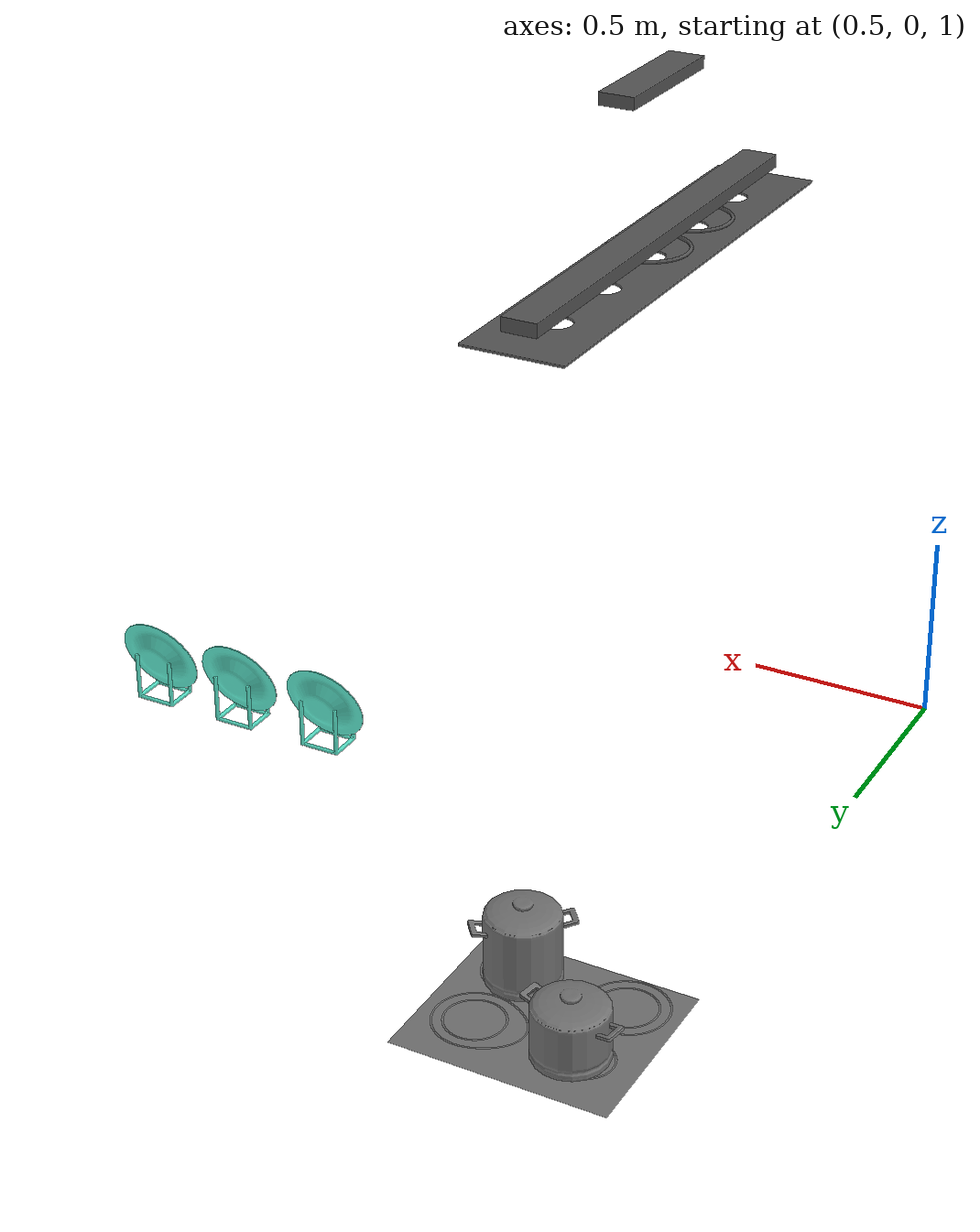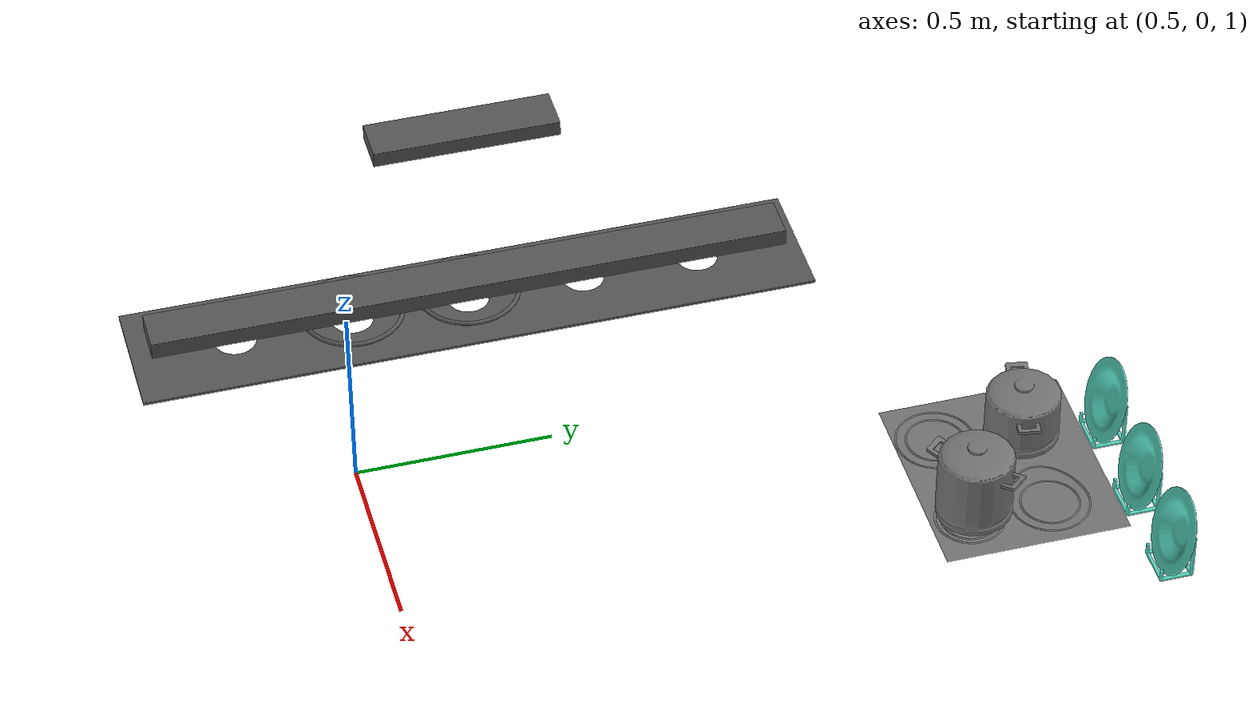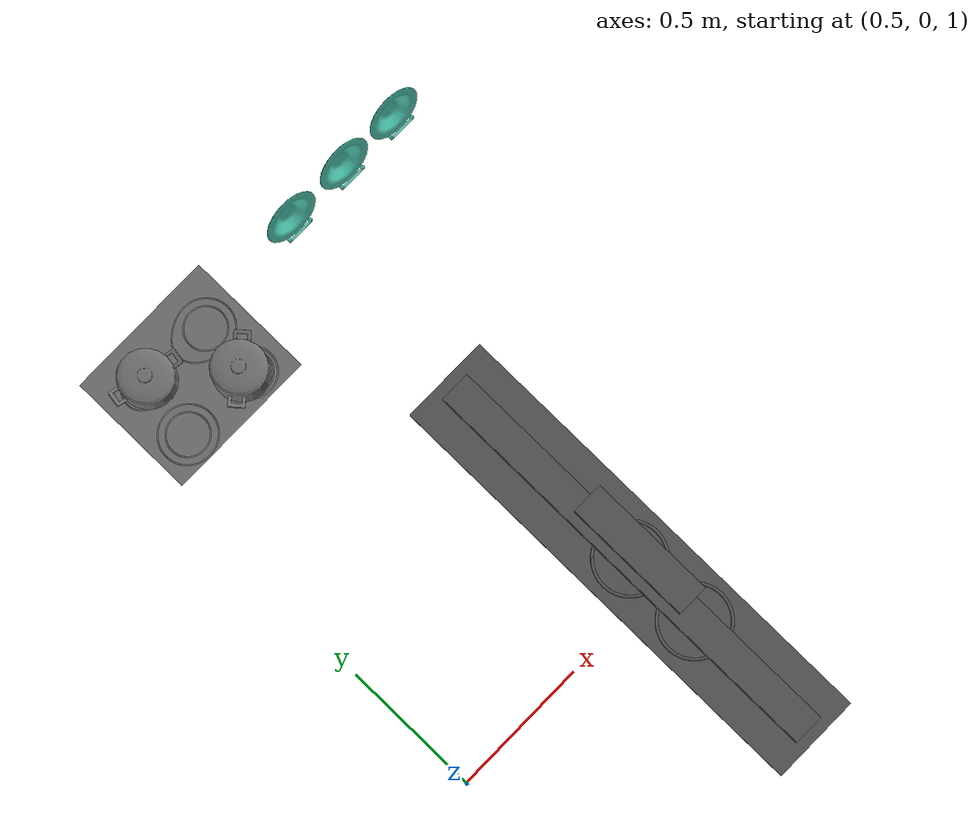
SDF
<sdf version="1.6">
 <world name="default">
  <model name="part20.obj">
   <static>1</static>
   <pose>-12.0 -13.9 0 0 0 0</pose>
   <link name="link_d20">
    <inertial>
     <mass>0</mass>
     <inertia>
      <ixx>0.166667</ixx>
      <ixy>0</ixy>
      <ixz>0</ixz>
      <iyy>0.166667</iyy>
      <iyz>0</iyz>
      <izz>0.166667</izz>
     </inertia>
    </inertial>
    <collision concave="yes" name="collision_20">
     <geometry><mesh><scale>.1 .1 .1</scale><uri>fatihrmutfak/part20.obj</uri></mesh></geometry>
    </collision>
    <visual name="visual">
     <geometry><mesh><scale>.1 .1 .1</scale><uri>fatihrmutfak/part20.obj</uri></mesh></geometry>
     <material>
      <ambient>1 0 0 1</ambient>
      <diffuse>0.451000 0.451000 0.451000 1</diffuse>
      <specular>0.1 0.1 0.1 1</specular>
      <emissive>0 0 0 0</emissive>
     </material>
    </visual>
   </link>
  </model>
  <model name="part21.obj">
   <static>1</static>
   <pose>-12.0 -13.9 0 0 0 0</pose>
   <link name="link_d21">
    <inertial>
     <mass>0</mass>
     <inertia>
      <ixx>0.166667</ixx>
      <ixy>0</ixy>
      <ixz>0</ixz>
      <iyy>0.166667</iyy>
      <iyz>0</iyz>
      <izz>0.166667</izz>
     </inertia>
    </inertial>
    <collision concave="yes" name="collision_21">
     <geometry><mesh><scale>.1 .1 .1</scale><uri>fatihrmutfak/part21.obj</uri></mesh></geometry>
    </collision>
    <visual name="visual">
     <geometry><mesh><scale>.1 .1 .1</scale><uri>fatihrmutfak/part21.obj</uri></mesh></geometry>
     <material>
      <ambient>1 0 0 1</ambient>
      <diffuse>0.451000 0.451000 0.451000 1</diffuse>
      <specular>0.1 0.1 0.1 1</specular>
      <emissive>0 0 0 0</emissive>
     </material>
    </visual>
   </link>
  </model>
  <model name="part22.obj">
   <static>1</static>
   <pose>-12.0 -13.9 0 0 0 0</pose>
   <link name="link_d22">
    <inertial>
     <mass>0</mass>
     <inertia>
      <ixx>0.166667</ixx>
      <ixy>0</ixy>
      <ixz>0</ixz>
      <iyy>0.166667</iyy>
      <iyz>0</iyz>
      <izz>0.166667</izz>
     </inertia>
    </inertial>
    <collision concave="yes" name="collision_22">
     <geometry><mesh><scale>.1 .1 .1</scale><uri>fatihrmutfak/part22.obj</uri></mesh></geometry>
    </collision>
    <visual name="visual">
     <geometry><mesh><scale>.1 .1 .1</scale><uri>fatihrmutfak/part22.obj</uri></mesh></geometry>
     <material>
      <ambient>1 0 0 1</ambient>
      <diffuse>0.451000 0.451000 0.451000 1</diffuse>
      <specular>0.1 0.1 0.1 1</specular>
      <emissive>0 0 0 0</emissive>
     </material>
    </visual>
   </link>
  </model>
  <model name="part23.obj">
   <static>1</static>
   <pose>-12.0 -13.9 0 0 0 0</pose>
   <link name="link_d23">
    <inertial>
     <mass>0</mass>
     <inertia>
      <ixx>0.166667</ixx>
      <ixy>0</ixy>
      <ixz>0</ixz>
      <iyy>0.166667</iyy>
      <iyz>0</iyz>
      <izz>0.166667</izz>
     </inertia>
    </inertial>
    <collision concave="yes" name="collision_23">
     <geometry><mesh><scale>.1 .1 .1</scale><uri>fatihrmutfak/part23.obj</uri></mesh></geometry>
    </collision>
    <visual name="visual">
     <geometry><mesh><scale>.1 .1 .1</scale><uri>fatihrmutfak/part23.obj</uri></mesh></geometry>
     <material>
      <ambient>1 0 0 1</ambient>
      <diffuse>0.451000 0.451000 0.451000 1</diffuse>
      <specular>0.1 0.1 0.1 1</specular>
      <emissive>0 0 0 0</emissive>
     </material>
    </visual>
   </link>
  </model>
  <model name="part24.obj">
   <static>1</static>
   <pose>-12.0 -13.9 0 0 0 0</pose>
   <link name="link_d24">
    <inertial>
     <mass>0</mass>
     <inertia>
      <ixx>0.166667</ixx>
      <ixy>0</ixy>
      <ixz>0</ixz>
      <iyy>0.166667</iyy>
      <iyz>0</iyz>
      <izz>0.166667</izz>
     </inertia>
    </inertial>
    <collision concave="yes" name="collision_24">
     <geometry><mesh><scale>.1 .1 .1</scale><uri>fatihrmutfak/part24.obj</uri></mesh></geometry>
    </collision>
    <visual name="visual">
     <geometry><mesh><scale>.1 .1 .1</scale><uri>fatihrmutfak/part24.obj</uri></mesh></geometry>
     <material>
      <ambient>1 0 0 1</ambient>
      <diffuse>0.451000 0.451000 0.451000 1</diffuse>
      <specular>0.1 0.1 0.1 1</specular>
      <emissive>0 0 0 0</emissive>
     </material>
    </visual>
   </link>
  </model>
  <model name="part25.obj">
   <static>1</static>
   <pose>-12.0 -13.9 0 0 0 0</pose>
   <link name="link_d25">
    <inertial>
     <mass>0</mass>
     <inertia>
      <ixx>0.166667</ixx>
      <ixy>0</ixy>
      <ixz>0</ixz>
      <iyy>0.166667</iyy>
      <iyz>0</iyz>
      <izz>0.166667</izz>
     </inertia>
    </inertial>
    <collision concave="yes" name="collision_25">
     <geometry><mesh><scale>.1 .1 .1</scale><uri>fatihrmutfak/part25.obj</uri></mesh></geometry>
    </collision>
    <visual name="visual">
     <geometry><mesh><scale>.1 .1 .1</scale><uri>fatihrmutfak/part25.obj</uri></mesh></geometry>
     <material>
      <ambient>1 0 0 1</ambient>
      <diffuse>0.451000 0.451000 0.451000 1</diffuse>
      <specular>0.1 0.1 0.1 1</specular>
      <emissive>0 0 0 0</emissive>
     </material>
    </visual>
   </link>
  </model>
  <model name="part26.obj">
   <static>1</static>
   <pose>-12.0 -13.9 0 0 0 0</pose>
   <link name="link_d26">
    <inertial>
     <mass>0</mass>
     <inertia>
      <ixx>0.166667</ixx>
      <ixy>0</ixy>
      <ixz>0</ixz>
      <iyy>0.166667</iyy>
      <iyz>0</iyz>
      <izz>0.166667</izz>
     </inertia>
    </inertial>
    <collision concave="yes" name="collision_26">
     <geometry><mesh><scale>.1 .1 .1</scale><uri>fatihrmutfak/part26.obj</uri></mesh></geometry>
    </collision>
    <visual name="visual">
     <geometry><mesh><scale>.1 .1 .1</scale><uri>fatihrmutfak/part26.obj</uri></mesh></geometry>
     <material>
      <ambient>1 0 0 1</ambient>
      <diffuse>0.451000 0.451000 0.451000 1</diffuse>
      <specular>0.1 0.1 0.1 1</specular>
      <emissive>0 0 0 0</emissive>
     </material>
    </visual>
   </link>
  </model>
  <model name="part27.obj">
   <static>1</static>
   <pose>-12.0 -13.9 0 0 0 0</pose>
   <link name="link_d27">
    <inertial>
     <mass>0</mass>
     <inertia>
      <ixx>0.166667</ixx>
      <ixy>0</ixy>
      <ixz>0</ixz>
      <iyy>0.166667</iyy>
      <iyz>0</iyz>
      <izz>0.166667</izz>
     </inertia>
    </inertial>
    <collision concave="yes" name="collision_27">
     <geometry><mesh><scale>.1 .1 .1</scale><uri>fatihrmutfak/part27.obj</uri></mesh></geometry>
    </collision>
    <visual name="visual">
     <geometry><mesh><scale>.1 .1 .1</scale><uri>fatihrmutfak/part27.obj</uri></mesh></geometry>
     <material>
      <ambient>1 0 0 1</ambient>
      <diffuse>0.451000 0.451000 0.451000 1</diffuse>
      <specular>0.1 0.1 0.1 1</specular>
      <emissive>0 0 0 0</emissive>
     </material>
    </visual>
   </link>
  </model>
  <model name="part28.obj">
   <static>1</static>
   <pose>-12.0 -13.9 0 0 0 0</pose>
   <link name="link_d28">
    <inertial>
     <mass>0</mass>
     <inertia>
      <ixx>0.166667</ixx>
      <ixy>0</ixy>
      <ixz>0</ixz>
      <iyy>0.166667</iyy>
      <iyz>0</iyz>
      <izz>0.166667</izz>
     </inertia>
    </inertial>
    <collision concave="yes" name="collision_28">
     <geometry><mesh><scale>.1 .1 .1</scale><uri>fatihrmutfak/part28.obj</uri></mesh></geometry>
    </collision>
    <visual name="visual">
     <geometry><mesh><scale>.1 .1 .1</scale><uri>fatihrmutfak/part28.obj</uri></mesh></geometry>
     <material>
      <ambient>1 0 0 1</ambient>
      <diffuse>0.341200 0.878400 0.776500 1</diffuse>
      <specular>0.1 0.1 0.1 1</specular>
      <emissive>0 0 0 0</emissive>
     </material>
    </visual>
   </link>
  </model>
  <model name="part29.obj">
   <static>1</static>
   <pose>-12.0 -13.9 0 0 0 0</pose>
   <link name="link_d29">
    <inertial>
     <mass>0</mass>
     <inertia>
      <ixx>0.166667</ixx>
      <ixy>0</ixy>
      <ixz>0</ixz>
      <iyy>0.166667</iyy>
      <iyz>0</iyz>
      <izz>0.166667</izz>
     </inertia>
    </inertial>
    <collision concave="yes" name="collision_29">
     <geometry><mesh><scale>.1 .1 .1</scale><uri>fatihrmutfak/part29.obj</uri></mesh></geometry>
    </collision>
    <visual name="visual">
     <geometry><mesh><scale>.1 .1 .1</scale><uri>fatihrmutfak/part29.obj</uri></mesh></geometry>
     <material>
      <ambient>1 0 0 1</ambient>
      <diffuse>0.341200 0.878400 0.776500 1</diffuse>
      <specular>0.1 0.1 0.1 1</specular>
      <emissive>0 0 0 0</emissive>
     </material>
    </visual>
   </link>
  </model>
  <model name="part30.obj">
   <static>1</static>
   <pose>-12.0 -13.9 0 0 0 0</pose>
   <link name="link_d30">
    <inertial>
     <mass>0</mass>
     <inertia>
      <ixx>0.166667</ixx>
      <ixy>0</ixy>
      <ixz>0</ixz>
      <iyy>0.166667</iyy>
      <iyz>0</iyz>
      <izz>0.166667</izz>
     </inertia>
    </inertial>
    <collision concave="yes" name="collision_30">
     <geometry><mesh><scale>.1 .1 .1</scale><uri>fatihrmutfak/part30.obj</uri></mesh></geometry>
    </collision>
    <visual name="visual">
     <geometry><mesh><scale>.1 .1 .1</scale><uri>fatihrmutfak/part30.obj</uri></mesh></geometry>
     <material>
      <ambient>1 0 0 1</ambient>
      <diffuse>0.341200 0.878400 0.776500 1</diffuse>
      <specular>0.1 0.1 0.1 1</specular>
      <emissive>0 0 0 0</emissive>
     </material>
    </visual>
   </link>
  </model>
  <model name="part31.obj">
   <static>1</static>
   <pose>-12.0 -13.9 0 0 0 0</pose>
   <link name="link_d31">
    <inertial>
     <mass>0</mass>
     <inertia>
      <ixx>0.166667</ixx>
      <ixy>0</ixy>
      <ixz>0</ixz>
      <iyy>0.166667</iyy>
      <iyz>0</iyz>
      <izz>0.166667</izz>
     </inertia>
    </inertial>
    <collision concave="yes" name="collision_31">
     <geometry><mesh><scale>.1 .1 .1</scale><uri>fatihrmutfak/part31.obj</uri></mesh></geometry>
    </collision>
    <visual name="visual">
     <geometry><mesh><scale>.1 .1 .1</scale><uri>fatihrmutfak/part31.obj</uri></mesh></geometry>
     <material>
      <ambient>1 0 0 1</ambient>
      <diffuse>0.341200 0.878400 0.776500 1</diffuse>
      <specular>0.1 0.1 0.1 1</specular>
      <emissive>0 0 0 0</emissive>
     </material>
    </visual>
   </link>
  </model>
  <model name="part32.obj">
   <static>1</static>
   <pose>-12.0 -13.9 0 0 0 0</pose>
   <link name="link_d32">
    <inertial>
     <mass>0</mass>
     <inertia>
      <ixx>0.166667</ixx>
      <ixy>0</ixy>
      <ixz>0</ixz>
      <iyy>0.166667</iyy>
      <iyz>0</iyz>
      <izz>0.166667</izz>
     </inertia>
    </inertial>
    <collision concave="yes" name="collision_32">
     <geometry><mesh><scale>.1 .1 .1</scale><uri>fatihrmutfak/part32.obj</uri></mesh></geometry>
    </collision>
    <visual name="visual">
     <geometry><mesh><scale>.1 .1 .1</scale><uri>fatihrmutfak/part32.obj</uri></mesh></geometry>
     <material>
      <ambient>1 0 0 1</ambient>
      <diffuse>0.341200 0.878400 0.776500 1</diffuse>
      <specular>0.1 0.1 0.1 1</specular>
      <emissive>0 0 0 0</emissive>
     </material>
    </visual>
   </link>
  </model>
  <model name="part33.obj">
   <static>1</static>
   <pose>-12.0 -13.9 0 0 0 0</pose>
   <link name="link_d33">
    <inertial>
     <mass>0</mass>
     <inertia>
      <ixx>0.166667</ixx>
      <ixy>0</ixy>
      <ixz>0</ixz>
      <iyy>0.166667</iyy>
      <iyz>0</iyz>
      <izz>0.166667</izz>
     </inertia>
    </inertial>
    <collision concave="yes" name="collision_33">
     <geometry><mesh><scale>.1 .1 .1</scale><uri>fatihrmutfak/part33.obj</uri></mesh></geometry>
    </collision>
    <visual name="visual">
     <geometry><mesh><scale>.1 .1 .1</scale><uri>fatihrmutfak/part33.obj</uri></mesh></geometry>
     <material>
      <ambient>1 0 0 1</ambient>
      <diffuse>0.341200 0.878400 0.776500 1</diffuse>
      <specular>0.1 0.1 0.1 1</specular>
      <emissive>0 0 0 0</emissive>
     </material>
    </visual>
   </link>
  </model>
  <model name="part34.obj">
   <static>1</static>
   <pose>-12.0 -13.9 0 0 0 0</pose>
   <link name="link_d34">
    <inertial>
     <mass>0</mass>
     <inertia>
      <ixx>0.166667</ixx>
      <ixy>0</ixy>
      <ixz>0</ixz>
      <iyy>0.166667</iyy>
      <iyz>0</iyz>
      <izz>0.166667</izz>
     </inertia>
    </inertial>
    <collision concave="yes" name="collision_34">
     <geometry><mesh><scale>.1 .1 .1</scale><uri>fatihrmutfak/part34.obj</uri></mesh></geometry>
    </collision>
    <visual name="visual">
     <geometry><mesh><scale>.1 .1 .1</scale><uri>fatihrmutfak/part34.obj</uri></mesh></geometry>
     <material>
      <ambient>1 0 0 1</ambient>
      <diffuse>0.337300 0.337300 0.337300 1</diffuse>
      <specular>0.1 0.1 0.1 1</specular>
      <emissive>0 0 0 0</emissive>
     </material>
    </visual>
   </link>
  </model>
  <model name="part35.obj">
   <static>1</static>
   <pose>-12.0 -13.9 0 0 0 0</pose>
   <link name="link_d35">
    <inertial>
     <mass>0</mass>
     <inertia>
      <ixx>0.166667</ixx>
      <ixy>0</ixy>
      <ixz>0</ixz>
      <iyy>0.166667</iyy>
      <iyz>0</iyz>
      <izz>0.166667</izz>
     </inertia>
    </inertial>
    <collision concave="yes" name="collision_35">
     <geometry><mesh><scale>.1 .1 .1</scale><uri>fatihrmutfak/part35.obj</uri></mesh></geometry>
    </collision>
    <visual name="visual">
     <geometry><mesh><scale>.1 .1 .1</scale><uri>fatihrmutfak/part35.obj</uri></mesh></geometry>
     <material>
      <ambient>1 0 0 1</ambient>
      <diffuse>0.337300 0.337300 0.337300 1</diffuse>
      <specular>0.1 0.1 0.1 1</specular>
      <emissive>0 0 0 0</emissive>
     </material>
    </visual>
   </link>
  </model>
  <model name="part36.obj">
   <static>1</static>
   <pose>-12.0 -13.9 0 0 0 0</pose>
   <link name="link_d36">
    <inertial>
     <mass>0</mass>
     <inertia>
      <ixx>0.166667</ixx>
      <ixy>0</ixy>
      <ixz>0</ixz>
      <iyy>0.166667</iyy>
      <iyz>0</iyz>
      <izz>0.166667</izz>
     </inertia>
    </inertial>
    <collision concave="yes" name="collision_36">
     <geometry><mesh><scale>.1 .1 .1</scale><uri>fatihrmutfak/part36.obj</uri></mesh></geometry>
    </collision>
    <visual name="visual">
     <geometry><mesh><scale>.1 .1 .1</scale><uri>fatihrmutfak/part36.obj</uri></mesh></geometry>
     <material>
      <ambient>1 0 0 1</ambient>
      <diffuse>0.337300 0.337300 0.337300 1</diffuse>
      <specular>0.1 0.1 0.1 1</specular>
      <emissive>0 0 0 0</emissive>
     </material>
    </visual>
   </link>
  </model>
  <model name="part37.obj">
   <static>1</static>
   <pose>-12.0 -13.9 0 0 0 0</pose>
   <link name="link_d37">
    <inertial>
     <mass>0</mass>
     <inertia>
      <ixx>0.166667</ixx>
      <ixy>0</ixy>
      <ixz>0</ixz>
      <iyy>0.166667</iyy>
      <iyz>0</iyz>
      <izz>0.166667</izz>
     </inertia>
    </inertial>
    <collision concave="yes" name="collision_37">
     <geometry><mesh><scale>.1 .1 .1</scale><uri>fatihrmutfak/part37.obj</uri></mesh></geometry>
    </collision>
    <visual name="visual">
     <geometry><mesh><scale>.1 .1 .1</scale><uri>fatihrmutfak/part37.obj</uri></mesh></geometry>
     <material>
      <ambient>1 0 0 1</ambient>
      <diffuse>0.337300 0.337300 0.337300 1</diffuse>
      <specular>0.1 0.1 0.1 1</specular>
      <emissive>0 0 0 0</emissive>
     </material>
    </visual>
   </link>
  </model>
  <model name="part38.obj">
   <static>1</static>
   <pose>-12.0 -13.9 0 0 0 0</pose>
   <link name="link_d38">
    <inertial>
     <mass>0</mass>
     <inertia>
      <ixx>0.166667</ixx>
      <ixy>0</ixy>
      <ixz>0</ixz>
      <iyy>0.166667</iyy>
      <iyz>0</iyz>
      <izz>0.166667</izz>
     </inertia>
    </inertial>
    <collision concave="yes" name="collision_38">
     <geometry><mesh><scale>.1 .1 .1</scale><uri>fatihrmutfak/part38.obj</uri></mesh></geometry>
    </collision>
    <visual name="visual">
     <geometry><mesh><scale>.1 .1 .1</scale><uri>fatihrmutfak/part38.obj</uri></mesh></geometry>
     <material>
      <ambient>1 0 0 1</ambient>
      <diffuse>0.337300 0.337300 0.337300 1</diffuse>
      <specular>0.1 0.1 0.1 1</specular>
      <emissive>0 0 0 0</emissive>
     </material>
    </visual>
   </link>
  </model>
  <model name="part39.obj">
   <static>1</static>
   <pose>-12.0 -13.9 0 0 0 0</pose>
   <link name="link_d39">
    <inertial>
     <mass>0</mass>
     <inertia>
      <ixx>0.166667</ixx>
      <ixy>0</ixy>
      <ixz>0</ixz>
      <iyy>0.166667</iyy>
      <iyz>0</iyz>
      <izz>0.166667</izz>
     </inertia>
    </inertial>
    <collision concave="yes" name="collision_39">
     <geometry><mesh><scale>.1 .1 .1</scale><uri>fatihrmutfak/part39.obj</uri></mesh></geometry>
    </collision>
    <visual name="visual">
     <geometry><mesh><scale>.1 .1 .1</scale><uri>fatihrmutfak/part39.obj</uri></mesh></geometry>
     <material>
      <ambient>1 0 0 1</ambient>
      <diffuse>0.337300 0.337300 0.337300 1</diffuse>
      <specular>0.1 0.1 0.1 1</specular>
      <emissive>0 0 0 0</emissive>
     </material>
    </visual>
   </link>
  </model>
 </world>
</sdf>
